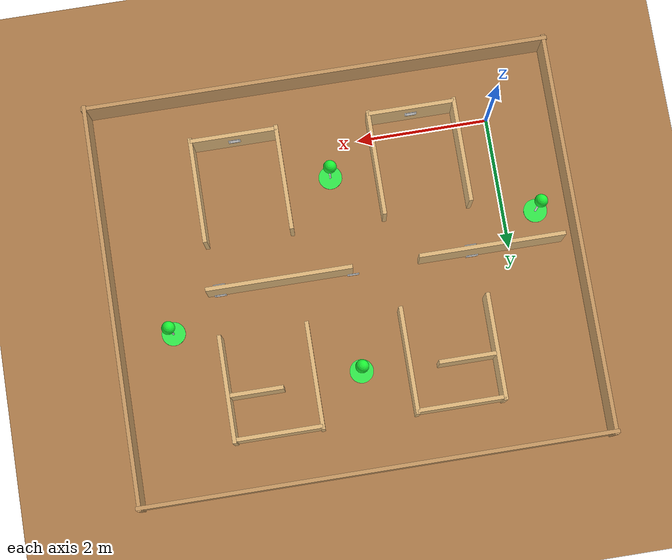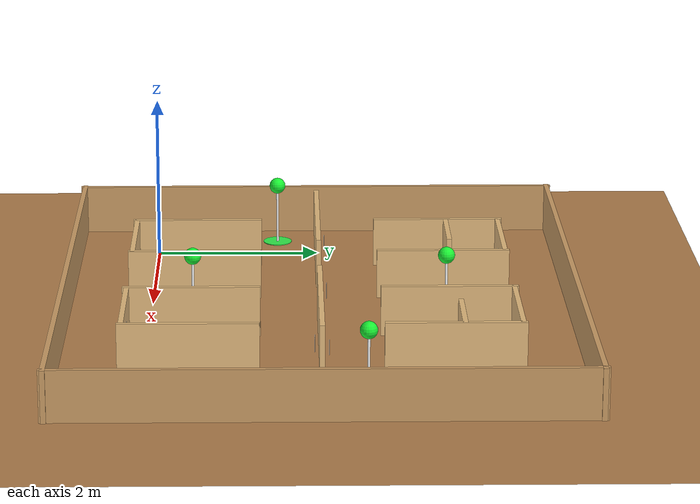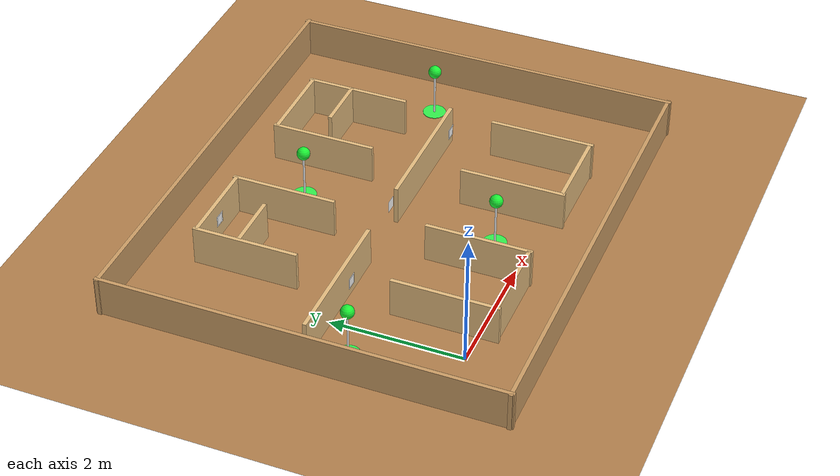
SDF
<sdf version="1.9">
 <world name="default">
  <physics name="10ms" type="ignored">
   <max_step_size>0.010</max_step_size>
   <real_time_factor>1.0</real_time_factor>
  </physics>
  <plugin filename="gz-sim-physics-system" name="gz::sim::systems::Physics"/>
  <plugin filename="gz-sim-user-commands-system" name="gz::sim::systems::UserCommands"/>
  <plugin filename="gz-sim-scene-broadcaster-system" name="gz::sim::systems::SceneBroadcaster"/>
  <plugin filename="gz-sim-sensors-system" name="gz::sim::systems::Sensors">
   <render_engine>ogre</render_engine>
  </plugin>
  <scene>
   <ambient>0.7 0.7 0.7 1</ambient>
   <background>0.55 0.65 0.80 1</background>
   <shadows>false</shadows>
  </scene>
  <light name="sun" type="directional">
   <pose>2.5 2 10 0 0 0</pose>
   <diffuse>1.0 1.0 1.0 1</diffuse>
   <specular>0.3 0.3 0.3 1</specular>
   <direction>-0.3 -0.3 -1.0</direction>
   <cast_shadows>false</cast_shadows>
  </light>
  <model name="ground_plane">
   <static>true</static>
   <pose>2.5 2.0 0 0 0 0</pose>
   <link name="link">
    <collision name="col"><geometry><plane><normal>0 0 1</normal><size>20 20</size></plane></geometry></collision>
    <visual name="vis">
     <geometry><plane><normal>0 0 1</normal><size>20 20</size></plane></geometry>
     <material>
      <ambient>0.55 0.40 0.25 1</ambient>
      <diffuse>0.70 0.50 0.30 1</diffuse>
      <specular>0.05 0.05 0.05 1</specular>
     </material>
    </visual>
   </link>
  </model>
  <model name="wall_south">
   <static>true</static>
   <pose>2.5 -1.0 0.30 0 0 0</pose>
   <link name="link">
    <visual name="v">
     <geometry><box><size>7.1 0.06 0.6</size></box></geometry>
     <material>
      <ambient>0.65 0.50 0.32 1</ambient>
      <diffuse>0.80 0.62 0.40 1</diffuse>
      <specular>0.10 0.08 0.05 1</specular>
     </material>
    </visual>
    <collision name="c"><geometry><box><size>7.1 0.06 0.6</size></box></geometry></collision>
   </link>
  </model>
  <model name="wall_north">
   <static>true</static>
   <pose>2.5 5.0 0.30 0 0 0</pose>
   <link name="link">
    <visual name="v">
     <geometry><box><size>7.1 0.06 0.6</size></box></geometry>
     <material>
      <ambient>0.65 0.50 0.32 1</ambient>
      <diffuse>0.80 0.62 0.40 1</diffuse>
      <specular>0.10 0.08 0.05 1</specular>
     </material>
    </visual>
    <collision name="c"><geometry><box><size>7.1 0.06 0.6</size></box></geometry></collision>
   </link>
  </model>
  <model name="wall_west">
   <static>true</static>
   <pose>-1.0 2.0 0.30 0 0 0</pose>
   <link name="link">
    <visual name="v">
     <geometry><box><size>0.06 6.1 0.6</size></box></geometry>
     <material>
      <ambient>0.65 0.50 0.32 1</ambient>
      <diffuse>0.80 0.62 0.40 1</diffuse>
      <specular>0.10 0.08 0.05 1</specular>
     </material>
    </visual>
    <collision name="c"><geometry><box><size>0.06 6.1 0.6</size></box></geometry></collision>
   </link>
  </model>
  <model name="wall_east">
   <static>true</static>
   <pose>6.0 2.0 0.30 0 0 0</pose>
   <link name="link">
    <visual name="v">
     <geometry><box><size>0.06 6.1 0.6</size></box></geometry>
     <material>
      <ambient>0.65 0.50 0.32 1</ambient>
      <diffuse>0.80 0.62 0.40 1</diffuse>
      <specular>0.10 0.08 0.05 1</specular>
     </material>
    </visual>
    <collision name="c"><geometry><box><size>0.06 6.1 0.6</size></box></geometry></collision>
   </link>
  </model>
  <model name="iv1_west">
   <static>true</static>
   <pose>0.5 3.5 0.30 0 0 0</pose>
   <link name="link">
    <visual name="v">
     <geometry><box><size>0.06 1.6 0.6</size></box></geometry>
     <material><ambient>0.75 0.60 0.40 1</ambient><diffuse>0.90 0.74 0.50 1</diffuse></material>
    </visual>
    <collision name="c"><geometry><box><size>0.06 1.6 0.6</size></box></geometry></collision>
   </link>
  </model>
  <model name="iv1_east">
   <static>true</static>
   <pose>1.8 3.5 0.30 0 0 0</pose>
   <link name="link">
    <visual name="v">
     <geometry><box><size>0.06 1.6 0.6</size></box></geometry>
     <material><ambient>0.75 0.60 0.40 1</ambient><diffuse>0.90 0.74 0.50 1</diffuse></material>
    </visual>
    <collision name="c"><geometry><box><size>0.06 1.6 0.6</size></box></geometry></collision>
   </link>
  </model>
  <model name="iv1_top">
   <static>true</static>
   <pose>1.15 4.25 0.30 0 0 0</pose>
   <link name="link">
    <visual name="v">
     <geometry><box><size>1.3 0.06 0.6</size></box></geometry>
     <material><ambient>0.75 0.60 0.40 1</ambient><diffuse>0.90 0.74 0.50 1</diffuse></material>
    </visual>
    <collision name="c"><geometry><box><size>1.3 0.06 0.6</size></box></geometry></collision>
   </link>
  </model>
  <model name="ih1">
   <static>true</static>
   <pose>0.95 3.6 0.30 0 0 0</pose>
   <link name="link">
    <visual name="v">
     <geometry><box><size>0.85 0.06 0.6</size></box></geometry>
     <material><ambient>0.75 0.60 0.40 1</ambient><diffuse>0.90 0.74 0.50 1</diffuse></material>
    </visual>
    <collision name="c"><geometry><box><size>0.85 0.06 0.6</size></box></geometry></collision>
   </link>
  </model>
  <model name="iv4_west">
   <static>true</static>
   <pose>3.2 3.5 0.30 0 0 0</pose>
   <link name="link">
    <visual name="v">
     <geometry><box><size>0.06 1.6 0.6</size></box></geometry>
     <material><ambient>0.75 0.60 0.40 1</ambient><diffuse>0.90 0.74 0.50 1</diffuse></material>
    </visual>
    <collision name="c"><geometry><box><size>0.06 1.6 0.6</size></box></geometry></collision>
   </link>
  </model>
  <model name="iv4_east">
   <static>true</static>
   <pose>4.5 3.5 0.30 0 0 0</pose>
   <link name="link">
    <visual name="v">
     <geometry><box><size>0.06 1.6 0.6</size></box></geometry>
     <material><ambient>0.75 0.60 0.40 1</ambient><diffuse>0.90 0.74 0.50 1</diffuse></material>
    </visual>
    <collision name="c"><geometry><box><size>0.06 1.6 0.6</size></box></geometry></collision>
   </link>
  </model>
  <model name="iv4_top">
   <static>true</static>
   <pose>3.85 4.25 0.30 0 0 0</pose>
   <link name="link">
    <visual name="v">
     <geometry><box><size>1.3 0.06 0.6</size></box></geometry>
     <material><ambient>0.75 0.60 0.40 1</ambient><diffuse>0.90 0.74 0.50 1</diffuse></material>
    </visual>
    <collision name="c"><geometry><box><size>1.3 0.06 0.6</size></box></geometry></collision>
   </link>
  </model>
  <model name="ih3">
   <static>true</static>
   <pose>4.10 3.6 0.30 0 0 0</pose>
   <link name="link">
    <visual name="v">
     <geometry><box><size>0.85 0.06 0.6</size></box></geometry>
     <material><ambient>0.75 0.60 0.40 1</ambient><diffuse>0.90 0.74 0.50 1</diffuse></material>
    </visual>
    <collision name="c"><geometry><box><size>0.85 0.06 0.6</size></box></geometry></collision>
   </link>
  </model>
  <model name="ih2_left">
   <static>true</static>
   <pose>0.30 2.0 0.30 0 0 0</pose>
   <link name="link">
    <visual name="v">
     <geometry><box><size>2.2 0.06 0.6</size></box></geometry>
     <material><ambient>0.75 0.60 0.40 1</ambient><diffuse>0.90 0.74 0.50 1</diffuse></material>
    </visual>
    <collision name="c"><geometry><box><size>2.2 0.06 0.6</size></box></geometry></collision>
   </link>
  </model>
  <model name="ih2_right">
   <static>true</static>
   <pose>3.50 2.0 0.30 0 0 0</pose>
   <link name="link">
    <visual name="v">
     <geometry><box><size>2.2 0.06 0.6</size></box></geometry>
     <material><ambient>0.75 0.60 0.40 1</ambient><diffuse>0.90 0.74 0.50 1</diffuse></material>
    </visual>
    <collision name="c"><geometry><box><size>2.2 0.06 0.6</size></box></geometry></collision>
   </link>
  </model>
  <model name="iv2_west">
   <static>true</static>
   <pose>0.5 0.5 0.30 0 0 0</pose>
   <link name="link">
    <visual name="v">
     <geometry><box><size>0.06 1.6 0.6</size></box></geometry>
     <material><ambient>0.75 0.60 0.40 1</ambient><diffuse>0.90 0.74 0.50 1</diffuse></material>
    </visual>
    <collision name="c"><geometry><box><size>0.06 1.6 0.6</size></box></geometry></collision>
   </link>
  </model>
  <model name="iv2_east">
   <static>true</static>
   <pose>1.8 0.5 0.30 0 0 0</pose>
   <link name="link">
    <visual name="v">
     <geometry><box><size>0.06 1.6 0.6</size></box></geometry>
     <material><ambient>0.75 0.60 0.40 1</ambient><diffuse>0.90 0.74 0.50 1</diffuse></material>
    </visual>
    <collision name="c"><geometry><box><size>0.06 1.6 0.6</size></box></geometry></collision>
   </link>
  </model>
  <model name="iv2_bottom">
   <static>true</static>
   <pose>1.15 -0.25 0.30 0 0 0</pose>
   <link name="link">
    <visual name="v">
     <geometry><box><size>1.3 0.06 0.6</size></box></geometry>
     <material><ambient>0.75 0.60 0.40 1</ambient><diffuse>0.90 0.74 0.50 1</diffuse></material>
    </visual>
    <collision name="c"><geometry><box><size>1.3 0.06 0.6</size></box></geometry></collision>
   </link>
  </model>
  <model name="iv3_west">
   <static>true</static>
   <pose>3.2 0.5 0.30 0 0 0</pose>
   <link name="link">
    <visual name="v">
     <geometry><box><size>0.06 1.6 0.6</size></box></geometry>
     <material><ambient>0.75 0.60 0.40 1</ambient><diffuse>0.90 0.74 0.50 1</diffuse></material>
    </visual>
    <collision name="c"><geometry><box><size>0.06 1.6 0.6</size></box></geometry></collision>
   </link>
  </model>
  <model name="iv3_east">
   <static>true</static>
   <pose>4.5 0.5 0.30 0 0 0</pose>
   <link name="link">
    <visual name="v">
     <geometry><box><size>0.06 1.6 0.6</size></box></geometry>
     <material><ambient>0.75 0.60 0.40 1</ambient><diffuse>0.90 0.74 0.50 1</diffuse></material>
    </visual>
    <collision name="c"><geometry><box><size>0.06 1.6 0.6</size></box></geometry></collision>
   </link>
  </model>
  <model name="iv3_bottom">
   <static>true</static>
   <pose>3.85 -0.25 0.30 0 0 0</pose>
   <link name="link">
    <visual name="v">
     <geometry><box><size>1.3 0.06 0.6</size></box></geometry>
     <material><ambient>0.75 0.60 0.40 1</ambient><diffuse>0.90 0.74 0.50 1</diffuse></material>
    </visual>
    <collision name="c"><geometry><box><size>1.3 0.06 0.6</size></box></geometry></collision>
   </link>
  </model>
  <include>
   <name>marker_1</name>
   <uri>model://aruco_marker_1</uri>
   <pose>0.6 1.92 0.30 0 0 -1.5708</pose>
  </include>
  <include>
   <name>marker_2</name>
   <uri>model://aruco_marker_2</uri>
   <pose>4.4 1.92 0.30 0 0 -1.5708</pose>
  </include>
  <include><name>marker_0</name><uri>model://aruco_marker_0</uri><pose>0.6 2.08 0.30 0 0 1.5708</pose></include>
  <include><name>marker_3</name><uri>model://aruco_marker_3</uri><pose>4.4 2.08 0.30 0 0 1.5708</pose></include>
  <include>
   <name>marker_10</name>
   <uri>model://aruco_marker_10</uri>
   <pose>1.15 4.22 0.30 0 0 -1.5708</pose>
  </include>
  <include>
   <name>marker_11</name>
   <uri>model://aruco_marker_11</uri>
   <pose>1.15 -0.22 0.30 0 0 1.5708</pose>
  </include>
  <include>
   <name>marker_12</name>
   <uri>model://aruco_marker_12</uri>
   <pose>3.85 -0.22 0.30 0 0 1.5708</pose>
  </include>
  <include>
   <name>marker_13</name>
   <uri>model://aruco_marker_13</uri>
   <pose>2.4 2.08 0.30 0 0 1.5708</pose>
  </include>
  <include><name>wp0_flag</name><uri>model://goal_flag</uri><pose>2.5 0.5 0 0 0 0</pose></include>
  <include><name>wp1_flag</name><uri>model://goal_flag</uri><pose>5.2 2.5 0 0 0 0</pose></include>
  <include><name>wp2_flag</name><uri>model://goal_flag</uri><pose>2.5 3.5 0 0 0 0</pose></include>
  <include><name>wp3_flag</name><uri>model://goal_flag</uri><pose>-0.5 1.5 0 0 0 0</pose></include>
 </world>
</sdf>

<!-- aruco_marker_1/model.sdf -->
<sdf version="1.6">
    <model name="aruco_marker_1">
        <static>true</static>
        <link name='link'>
            <inertial>
                <mass>0.281</mass>
                <inertia><ixx>0.0006167</ixx><iyy>0.0006167</iyy><izz>0.0006167</izz><ixy>0</ixy><ixz>0</ixz><iyz>0</iyz></inertia>
            </inertial>
            <collision name="collision">
                <geometry><box><size>0.001 0.18 0.18</size></box></geometry>
            </collision>
            <visual name="box_visual">
                <cast_shadows>0</cast_shadows>
                <geometry><box><size>0.001 0.18 0.18</size></box></geometry>
                <material>
                    <ambient>0.95 0.95 0.95 1</ambient>
                    <diffuse>1.0 1.0 1.0 1</diffuse>
                    <specular>0.05 0.05 0.05 1</specular>
                </material>
            </visual>
            <visual name="aruco_face">
                <cast_shadows>0</cast_shadows>
                <pose>0.00065 0 0 1.5708 0 1.5708</pose>
                <geometry><plane><normal>0 0 1</normal><size>0.14 0.14</size></plane></geometry>
                <material>
                    <pbr>
                        <metal>
                            <albedo_map>model://aruco_marker_1/materials/textures/marker1.png</albedo_map>
                        </metal>
                    </pbr>
                    <ambient>1 1 1 1</ambient>
                    <diffuse>1 1 1 1</diffuse>
                </material>
            </visual>
        </link>
    </model>
</sdf>

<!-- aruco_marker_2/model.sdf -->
<sdf version="1.6">
    <model name="aruco_marker_2">
        <static>true</static>
        <link name='link'>
            <inertial>
                <mass>0.281</mass>
                <inertia><ixx>0.0006167</ixx><iyy>0.0006167</iyy><izz>0.0006167</izz><ixy>0</ixy><ixz>0</ixz><iyz>0</iyz></inertia>
            </inertial>
            <collision name="collision">
                <geometry><box><size>0.001 0.18 0.18</size></box></geometry>
            </collision>
            <visual name="box_visual">
                <cast_shadows>0</cast_shadows>
                <geometry><box><size>0.001 0.18 0.18</size></box></geometry>
                <material>
                    <ambient>0.95 0.95 0.95 1</ambient>
                    <diffuse>1.0 1.0 1.0 1</diffuse>
                    <specular>0.05 0.05 0.05 1</specular>
                </material>
            </visual>
            <visual name="aruco_face">
                <cast_shadows>0</cast_shadows>
                <pose>0.00065 0 0 1.5708 0 1.5708</pose>
                <geometry><plane><normal>0 0 1</normal><size>0.14 0.14</size></plane></geometry>
                <material>
                    <pbr>
                        <metal>
                            <albedo_map>model://aruco_marker_2/materials/textures/marker2.png</albedo_map>
                        </metal>
                    </pbr>
                    <ambient>1 1 1 1</ambient>
                    <diffuse>1 1 1 1</diffuse>
                </material>
            </visual>
        </link>
    </model>
</sdf>

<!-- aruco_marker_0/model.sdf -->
<sdf version="1.6">
    <model name="aruco_marker_0">
        <static>true</static>
        <link name='link'>
            <inertial>
                <mass>0.281</mass>
                <inertia><ixx>0.0006167</ixx><iyy>0.0006167</iyy><izz>0.0006167</izz><ixy>0</ixy><ixz>0</ixz><iyz>0</iyz></inertia>
            </inertial>
            <collision name="collision">
                <geometry><box><size>0.001 0.18 0.18</size></box></geometry>
            </collision>
            <visual name="box_visual">
                <cast_shadows>0</cast_shadows>
                <geometry><box><size>0.001 0.18 0.18</size></box></geometry>
                <material>
                    <ambient>0.95 0.95 0.95 1</ambient>
                    <diffuse>1.0 1.0 1.0 1</diffuse>
                    <specular>0.05 0.05 0.05 1</specular>
                </material>
            </visual>
            <visual name="aruco_face">
                <cast_shadows>0</cast_shadows>
                <pose>0.00065 0 0 1.5708 0 1.5708</pose>
                <geometry><plane><normal>0 0 1</normal><size>0.14 0.14</size></plane></geometry>
                <material>
                    <pbr>
                        <metal>
                            <albedo_map>model://aruco_marker_0/materials/textures/marker0.png</albedo_map>
                        </metal>
                    </pbr>
                    <ambient>1 1 1 1</ambient>
                    <diffuse>1 1 1 1</diffuse>
                </material>
            </visual>
        </link>
    </model>
</sdf>

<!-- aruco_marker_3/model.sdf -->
<sdf version="1.6">
    <model name="aruco_marker_3">
        <static>true</static>
        <link name='link'>
            <inertial>
                <mass>0.281</mass>
                <inertia><ixx>0.0006167</ixx><iyy>0.0006167</iyy><izz>0.0006167</izz><ixy>0</ixy><ixz>0</ixz><iyz>0</iyz></inertia>
            </inertial>
            <collision name="collision">
                <geometry><box><size>0.001 0.18 0.18</size></box></geometry>
            </collision>
            <visual name="box_visual">
                <cast_shadows>0</cast_shadows>
                <geometry><box><size>0.001 0.18 0.18</size></box></geometry>
                <material>
                    <ambient>0.95 0.95 0.95 1</ambient>
                    <diffuse>1.0 1.0 1.0 1</diffuse>
                    <specular>0.05 0.05 0.05 1</specular>
                </material>
            </visual>
            <visual name="aruco_face">
                <cast_shadows>0</cast_shadows>
                <pose>0.00065 0 0 1.5708 0 1.5708</pose>
                <geometry><plane><normal>0 0 1</normal><size>0.14 0.14</size></plane></geometry>
                <material>
                    <pbr>
                        <metal>
                            <albedo_map>model://aruco_marker_3/materials/textures/marker3.png</albedo_map>
                        </metal>
                    </pbr>
                    <ambient>1 1 1 1</ambient>
                    <diffuse>1 1 1 1</diffuse>
                </material>
            </visual>
        </link>
    </model>
</sdf>

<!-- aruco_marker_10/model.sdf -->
<sdf version="1.6">
    <model name="aruco_marker_10">
        <static>true</static>
        <link name='link'>
            <inertial>
                <mass>0.281</mass>
                <inertia><ixx>0.0006167</ixx><iyy>0.0006167</iyy><izz>0.0006167</izz><ixy>0</ixy><ixz>0</ixz><iyz>0</iyz></inertia>
            </inertial>
            <collision name="collision">
                <geometry><box><size>0.001 0.18 0.18</size></box></geometry>
            </collision>
            <visual name="box_visual">
                <cast_shadows>0</cast_shadows>
                <geometry><box><size>0.001 0.18 0.18</size></box></geometry>
                <material>
                    <ambient>0.95 0.95 0.95 1</ambient>
                    <diffuse>1.0 1.0 1.0 1</diffuse>
                    <specular>0.05 0.05 0.05 1</specular>
                </material>
            </visual>
            <visual name="aruco_face">
                <cast_shadows>0</cast_shadows>
                <pose>0.00065 0 0 1.5708 0 1.5708</pose>
                <geometry><plane><normal>0 0 1</normal><size>0.14 0.14</size></plane></geometry>
                <material>
                    <pbr>
                        <metal>
                            <albedo_map>model://aruco_marker_10/materials/textures/marker10.png</albedo_map>
                        </metal>
                    </pbr>
                    <ambient>1 1 1 1</ambient>
                    <diffuse>1 1 1 1</diffuse>
                </material>
            </visual>
        </link>
    </model>
</sdf>

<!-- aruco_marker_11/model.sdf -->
<sdf version="1.6">
    <model name="aruco_marker_11">
        <static>true</static>
        <link name='link'>
            <inertial>
                <mass>0.281</mass>
                <inertia><ixx>0.0006167</ixx><iyy>0.0006167</iyy><izz>0.0006167</izz><ixy>0</ixy><ixz>0</ixz><iyz>0</iyz></inertia>
            </inertial>
            <collision name="collision">
                <geometry><box><size>0.001 0.18 0.18</size></box></geometry>
            </collision>
            <visual name="box_visual">
                <cast_shadows>0</cast_shadows>
                <geometry><box><size>0.001 0.18 0.18</size></box></geometry>
                <material>
                    <ambient>0.95 0.95 0.95 1</ambient>
                    <diffuse>1.0 1.0 1.0 1</diffuse>
                    <specular>0.05 0.05 0.05 1</specular>
                </material>
            </visual>
            <visual name="aruco_face">
                <cast_shadows>0</cast_shadows>
                <pose>0.00065 0 0 1.5708 0 1.5708</pose>
                <geometry><plane><normal>0 0 1</normal><size>0.14 0.14</size></plane></geometry>
                <material>
                    <pbr>
                        <metal>
                            <albedo_map>model://aruco_marker_11/materials/textures/marker11.png</albedo_map>
                        </metal>
                    </pbr>
                    <ambient>1 1 1 1</ambient>
                    <diffuse>1 1 1 1</diffuse>
                </material>
            </visual>
        </link>
    </model>
</sdf>

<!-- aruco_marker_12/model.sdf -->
<sdf version="1.6">
    <model name="aruco_marker_12">
        <static>true</static>
        <link name='link'>
            <inertial>
                <mass>0.281</mass>
                <inertia><ixx>0.0006167</ixx><iyy>0.0006167</iyy><izz>0.0006167</izz><ixy>0</ixy><ixz>0</ixz><iyz>0</iyz></inertia>
            </inertial>
            <collision name="collision">
                <geometry><box><size>0.001 0.18 0.18</size></box></geometry>
            </collision>
            <visual name="box_visual">
                <cast_shadows>0</cast_shadows>
                <geometry><box><size>0.001 0.18 0.18</size></box></geometry>
                <material>
                    <ambient>0.95 0.95 0.95 1</ambient>
                    <diffuse>1.0 1.0 1.0 1</diffuse>
                    <specular>0.05 0.05 0.05 1</specular>
                </material>
            </visual>
            <visual name="aruco_face">
                <cast_shadows>0</cast_shadows>
                <pose>0.00065 0 0 1.5708 0 1.5708</pose>
                <geometry><plane><normal>0 0 1</normal><size>0.14 0.14</size></plane></geometry>
                <material>
                    <pbr>
                        <metal>
                            <albedo_map>model://aruco_marker_12/materials/textures/marker12.png</albedo_map>
                        </metal>
                    </pbr>
                    <ambient>1 1 1 1</ambient>
                    <diffuse>1 1 1 1</diffuse>
                </material>
            </visual>
        </link>
    </model>
</sdf>

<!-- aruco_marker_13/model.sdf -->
<sdf version="1.6">
    <model name="aruco_marker_13">
        <static>true</static>
        <link name='link'>
            <inertial>
                <mass>0.281</mass>
                <inertia><ixx>0.0006167</ixx><iyy>0.0006167</iyy><izz>0.0006167</izz><ixy>0</ixy><ixz>0</ixz><iyz>0</iyz></inertia>
            </inertial>
            <collision name="collision">
                <geometry><box><size>0.001 0.18 0.18</size></box></geometry>
            </collision>
            <visual name="box_visual">
                <cast_shadows>0</cast_shadows>
                <geometry><box><size>0.001 0.18 0.18</size></box></geometry>
                <material>
                    <ambient>0.95 0.95 0.95 1</ambient>
                    <diffuse>1.0 1.0 1.0 1</diffuse>
                    <specular>0.05 0.05 0.05 1</specular>
                </material>
            </visual>
            <visual name="aruco_face">
                <cast_shadows>0</cast_shadows>
                <pose>0.00065 0 0 1.5708 0 1.5708</pose>
                <geometry><plane><normal>0 0 1</normal><size>0.14 0.14</size></plane></geometry>
                <material>
                    <pbr>
                        <metal>
                            <albedo_map>model://aruco_marker_13/materials/textures/marker13.png</albedo_map>
                        </metal>
                    </pbr>
                    <ambient>1 1 1 1</ambient>
                    <diffuse>1 1 1 1</diffuse>
                </material>
            </visual>
        </link>
    </model>
</sdf>

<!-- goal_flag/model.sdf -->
<sdf version="1.9">
  <model name="goal_flag">
    <static>true</static>
    <self_collide>false</self_collide>

    <link name="link">
      <laser_retro>0.0</laser_retro>

      <!-- Disco de base en el piso para ver el "punto exacto" del goal -->
      <visual name="base_disc">
        <pose>0 0 0.005 0 0 0</pose>
        <cast_shadows>false</cast_shadows>
        <geometry>
          <cylinder>
            <radius>0.18</radius>
            <length>0.01</length>
          </cylinder>
        </geometry>
        <material>
          <ambient>0.10 0.80 0.20 1</ambient>
          <diffuse>0.20 0.95 0.30 1</diffuse>
          <specular>0.30 1.00 0.40 1</specular>
          <emissive>0.05 0.50 0.10 1</emissive>
        </material>
      </visual>

      <!-- Poste blanco delgado -->
      <visual name="pole">
        <pose>0 0 0.35 0 0 0</pose>
        <cast_shadows>false</cast_shadows>
        <geometry>
          <cylinder>
            <radius>0.015</radius>
            <length>0.70</length>
          </cylinder>
        </geometry>
        <material>
          <ambient>0.85 0.85 0.85 1</ambient>
          <diffuse>0.95 0.95 0.95 1</diffuse>
          <specular>1.00 1.00 1.00 1</specular>
        </material>
      </visual>

      <!-- Esfera verde brillante arriba del poste -->
      <visual name="sphere">
        <pose>0 0 0.75 0 0 0</pose>
        <cast_shadows>false</cast_shadows>
        <geometry>
          <sphere>
            <radius>0.10</radius>
          </sphere>
        </geometry>
        <material>
          <ambient>0.05 0.70 0.10 1</ambient>
          <diffuse>0.10 0.95 0.20 1</diffuse>
          <specular>0.30 1.00 0.40 1</specular>
          <emissive>0.10 0.60 0.15 1</emissive>
        </material>
      </visual>

    </link>
  </model>
</sdf>
